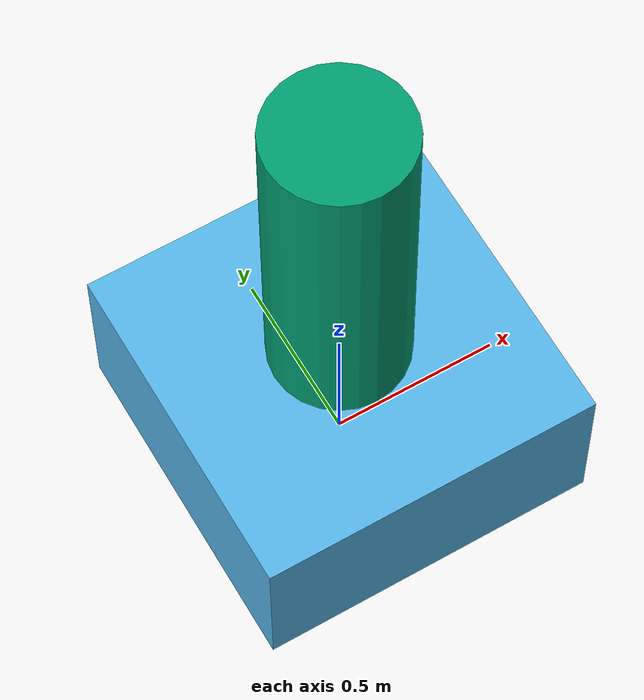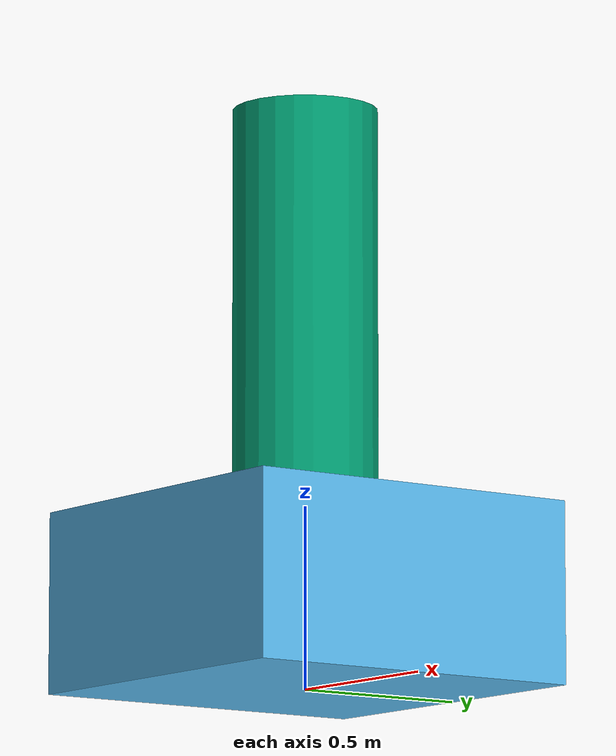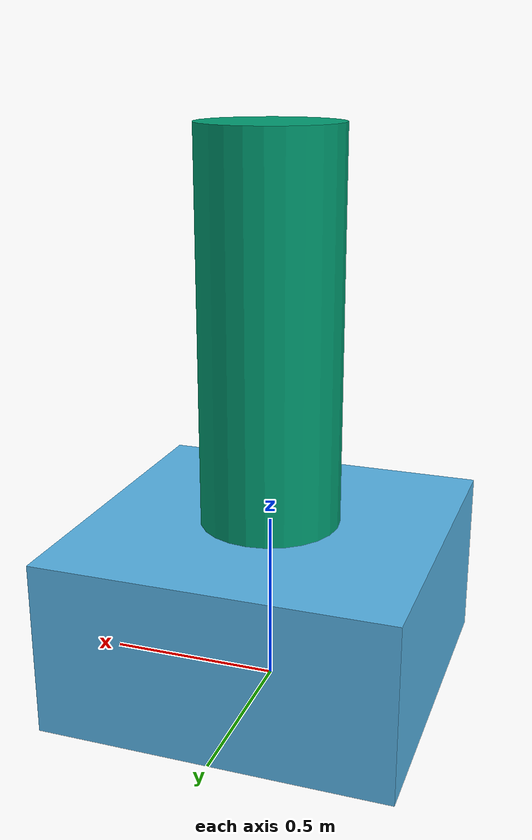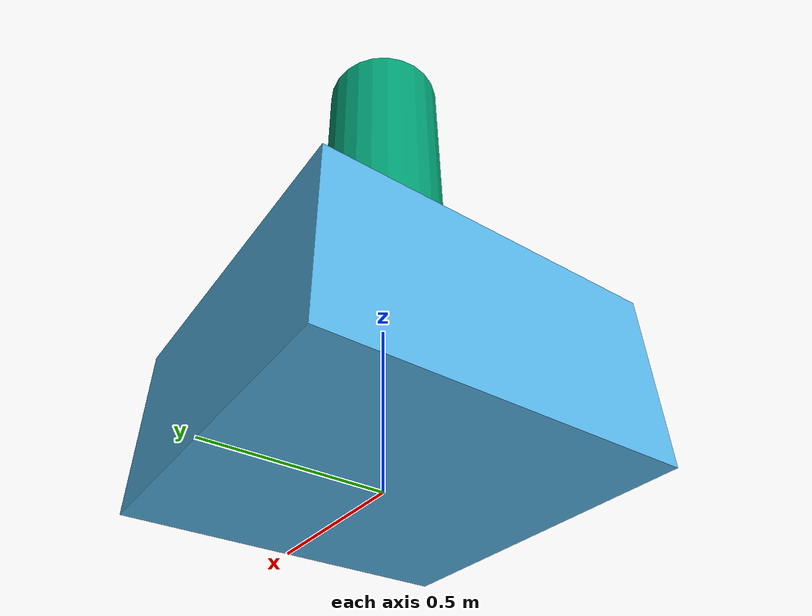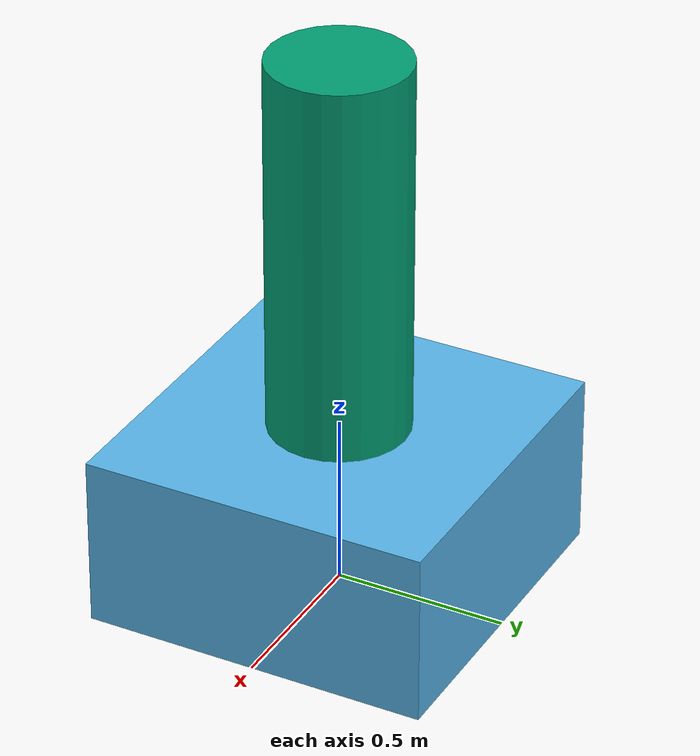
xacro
<?xml version="1.0" ?>
<robot name="mi_robot" xmlns:xacro="http://ros.org/wiki/xacro">

  <link name="world"/>

  <link name="base_link">
    <visual>
      <geometry>
        <box size="1.0 1.0 0.5"/>
      </geometry>
    </visual>
    <collision>
      <geometry>
        <box size="1.0 1.0 0.5"/>
      </geometry>
    </collision>
  </link>

  <joint name="world_to_base_link" type="fixed">
    <parent link="world"/>
    <child link="base_link"/>
    <origin xyz="0 0 0.25" rpy="0 0 0"/>
  </joint>

  <link name="link_0">
    <visual>
      <origin xyz="0 0 0" rpy="0 0 0"/>
      <geometry>
        <cylinder length="1.1" radius="0.2"/>
      </geometry>
    </visual>
    <collision>
      <geometry>
        <cylinder length="1.1" radius="0.2"/>
      </geometry>
    </collision>
  </link>

  <joint name="base_link_to_link_0" type="revolute">
    <axis xyz="0 0 1"/>
    <limit lower="-3.1416" upper="3.1416" effort="10" velocity="3"/>
    <parent link="base_link"/>
    <child link="link_0"/>
    <origin xyz="0 0 0.8" rpy="0 0 0"/>
  </joint>

  <link name="link_1">
    <visual>
      <origin xyz="0 0 -0.55" rpy="0 0 0"/>
      <geometry>
        <cylinder length="1.1" radius="0.2"/>
      </geometry>
    </visual>
    <collision>
      <geometry>
        <cylinder length="1.1" radius="0.2"/>
      </geometry>
    </collision>
  </link>

  <joint name="link_0_to_link_1" type="revolute">
    <axis xyz="0 1 0"/>
    <limit lower="-3.1416" upper="3.1416" effort="10" velocity="3"/>
    <parent link="link_0"/>
    <child link="link_1"/>
    <origin xyz="0 0 0.55" rpy="0 0 0"/>
  </joint>

</robot>
